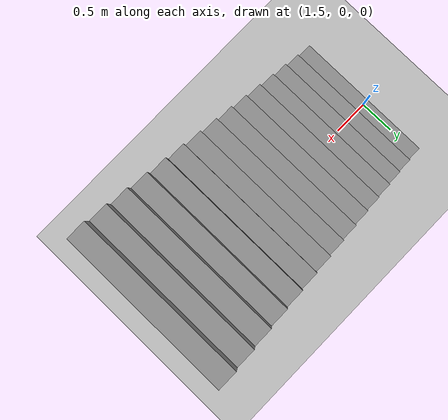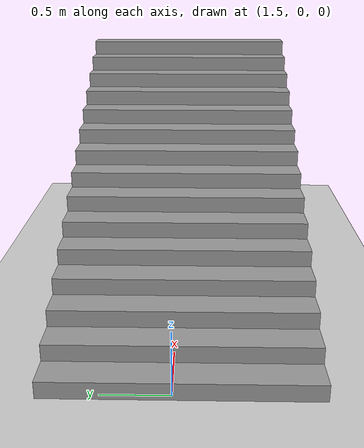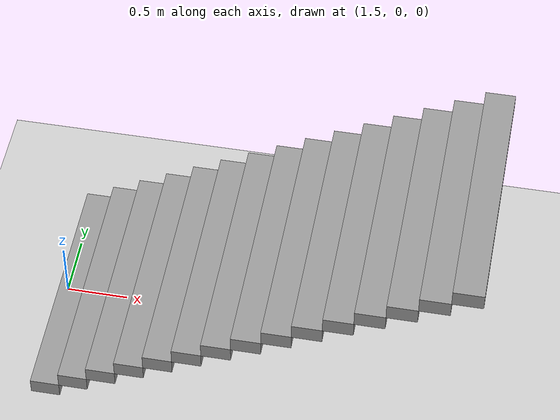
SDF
<sdf version="1.7">
 <world name="default">
  <light name="sun" type="directional">
   <pose>0 0 10 0 -0 0</pose>
   <diffuse>0.8 0.8 0.8 1</diffuse>
   <specular>0.2 0.2 0.2 1</specular>
   <attenuation>
    <range>1000</range>
    <constant>0.9</constant>
    <linear>0.01</linear>
    <quadratic>0.001</quadratic>
   </attenuation>
   <direction>-0.5 0.1 -0.9</direction>
   <spot><inner_angle>0</inner_angle><outer_angle>0</outer_angle><falloff>0</falloff></spot>
  </light>
  <model name="ground_plane">
   <static>1</static>
   <link name="link">
    <collision name="collision">
     <geometry><plane><normal>0 0 1</normal><size>100 100</size></plane></geometry>
     <surface>
      <contact><collide_bitmask>65535</collide_bitmask></contact>
      <friction><ode><mu>100</mu><mu2>50</mu2></ode></friction>
     </surface>
    </collision>
    <visual name="visual">
     <cast_shadows>0</cast_shadows>
     <geometry><plane><normal>0 0 1</normal><size>100 100</size></plane></geometry>
     <material>
      <script><uri>file://media/materials/scripts/gazebo.material</uri><name>Gazebo/Grey</name></script>
     </material>
    </visual>
   </link>
  </model>
  <gravity>0 0 -9.8</gravity>
  <magnetic_field>6e-06 2.3e-05 -4.2e-05</magnetic_field>
  <atmosphere type="adiabatic"/>
  <physics type="ode">
   <max_step_size>0.001</max_step_size>
   <real_time_factor>1</real_time_factor>
   <real_time_update_rate>1000</real_time_update_rate>
  </physics>
  <scene><ambient>0.4 0.4 0.4 1</ambient><background>0.7 0.7 0.7 1</background><shadows>1</shadows></scene>
  <spherical_coordinates>
   <surface_model>EARTH_WGS84</surface_model>
   <latitude_deg>0</latitude_deg>
   <longitude_deg>0</longitude_deg>
   <elevation>0</elevation>
   <heading_deg>0</heading_deg>
  </spherical_coordinates>
  <model name="stair1">
   <pose>2.4767 -0.063951 0 0 -0 0</pose>
   <link name="Stairs_0">
    <visual name="Stairs_0_Visual_0">
     <pose>-0.906633 -0 0.066667 0 -0 1.5708</pose>
     <geometry><box><size>2 0.233333 0.133333</size></box></geometry>
     <material>
      <script><uri>file://media/materials/scripts/gazebo.material</uri><name>Gazebo/Grey</name></script>
      <ambient>1 1 1 1</ambient>
     </material>
     <meta><layer>0</layer></meta>
    </visual>
    <collision name="Stairs_0_Collision_0">
     <geometry><box><size>2 0.233333 0.133333</size></box></geometry>
     <pose>-0.906633 -0 0.066667 0 -0 1.5708</pose>
    </collision>
    <visual name="Stairs_0_Visual_1">
     <pose>-0.673299 -0 0.2 0 -0 1.5708</pose>
     <geometry><box><size>2 0.233333 0.133333</size></box></geometry>
     <material>
      <script><uri>file://media/materials/scripts/gazebo.material</uri><name>Gazebo/Grey</name></script>
      <ambient>1 1 1 1</ambient>
     </material>
     <meta><layer>0</layer></meta>
    </visual>
    <collision name="Stairs_0_Collision_1">
     <geometry><box><size>2 0.233333 0.133333</size></box></geometry>
     <pose>-0.673299 -0 0.2 0 -0 1.5708</pose>
    </collision>
    <visual name="Stairs_0_Visual_2">
     <pose>-0.439966 -0 0.333333 0 -0 1.5708</pose>
     <geometry><box><size>2 0.233333 0.133333</size></box></geometry>
     <material>
      <script><uri>file://media/materials/scripts/gazebo.material</uri><name>Gazebo/Grey</name></script>
      <ambient>1 1 1 1</ambient>
     </material>
     <meta><layer>0</layer></meta>
    </visual>
    <collision name="Stairs_0_Collision_2">
     <geometry><box><size>2 0.233333 0.133333</size></box></geometry>
     <pose>-0.439966 -0 0.333333 0 -0 1.5708</pose>
    </collision>
    <visual name="Stairs_0_Visual_3">
     <pose>-0.206633 -0 0.466667 0 -0 1.5708</pose>
     <geometry><box><size>2 0.233333 0.133333</size></box></geometry>
     <material>
      <script><uri>file://media/materials/scripts/gazebo.material</uri><name>Gazebo/Grey</name></script>
      <ambient>1 1 1 1</ambient>
     </material>
     <meta><layer>0</layer></meta>
    </visual>
    <collision name="Stairs_0_Collision_3">
     <geometry><box><size>2 0.233333 0.133333</size></box></geometry>
     <pose>-0.206633 -0 0.466667 0 -0 1.5708</pose>
    </collision>
    <visual name="Stairs_0_Visual_4">
     <pose>0.026701 -0 0.6 0 -0 1.5708</pose>
     <geometry><box><size>2 0.233333 0.133333</size></box></geometry>
     <material>
      <script><uri>file://media/materials/scripts/gazebo.material</uri><name>Gazebo/Grey</name></script>
      <ambient>1 1 1 1</ambient>
     </material>
     <meta><layer>0</layer></meta>
    </visual>
    <collision name="Stairs_0_Collision_4">
     <geometry><box><size>2 0.233333 0.133333</size></box></geometry>
     <pose>0.026701 -0 0.6 0 -0 1.5708</pose>
    </collision>
    <visual name="Stairs_0_Visual_5">
     <pose>0.260034 -0 0.733333 0 -0 1.5708</pose>
     <geometry><box><size>2 0.233333 0.133333</size></box></geometry>
     <material>
      <script><uri>file://media/materials/scripts/gazebo.material</uri><name>Gazebo/Grey</name></script>
      <ambient>1 1 1 1</ambient>
     </material>
     <meta><layer>0</layer></meta>
    </visual>
    <collision name="Stairs_0_Collision_5">
     <geometry><box><size>2 0.233333 0.133333</size></box></geometry>
     <pose>0.260034 -0 0.733333 0 -0 1.5708</pose>
    </collision>
    <visual name="Stairs_0_Visual_6">
     <pose>0.493368 -0 0.866667 0 -0 1.5708</pose>
     <geometry><box><size>2 0.233333 0.133333</size></box></geometry>
     <material>
      <script><uri>file://media/materials/scripts/gazebo.material</uri><name>Gazebo/Grey</name></script>
      <ambient>1 1 1 1</ambient>
     </material>
     <meta><layer>0</layer></meta>
    </visual>
    <collision name="Stairs_0_Collision_6">
     <geometry><box><size>2 0.233333 0.133333</size></box></geometry>
     <pose>0.493368 -0 0.866667 0 -0 1.5708</pose>
    </collision>
    <visual name="Stairs_0_Visual_7">
     <pose>0.726701 -0 1 0 -0 1.5708</pose>
     <geometry><box><size>2 0.233333 0.133333</size></box></geometry>
     <material>
      <script><uri>file://media/materials/scripts/gazebo.material</uri><name>Gazebo/Grey</name></script>
      <ambient>1 1 1 1</ambient>
     </material>
     <meta><layer>0</layer></meta>
    </visual>
    <collision name="Stairs_0_Collision_7">
     <geometry><box><size>2 0.233333 0.133333</size></box></geometry>
     <pose>0.726701 -0 1 0 -0 1.5708</pose>
    </collision>
    <visual name="Stairs_0_Visual_8">
     <pose>0.960034 0 1.13333 0 -0 1.5708</pose>
     <geometry><box><size>2 0.233333 0.133333</size></box></geometry>
     <material>
      <script><uri>file://media/materials/scripts/gazebo.material</uri><name>Gazebo/Grey</name></script>
      <ambient>1 1 1 1</ambient>
     </material>
     <meta><layer>0</layer></meta>
    </visual>
    <collision name="Stairs_0_Collision_8">
     <geometry><box><size>2 0.233333 0.133333</size></box></geometry>
     <pose>0.960034 0 1.13333 0 -0 1.5708</pose>
    </collision>
    <visual name="Stairs_0_Visual_9">
     <pose>1.19337 0 1.26667 0 -0 1.5708</pose>
     <geometry><box><size>2 0.233333 0.133333</size></box></geometry>
     <material>
      <script><uri>file://media/materials/scripts/gazebo.material</uri><name>Gazebo/Grey</name></script>
      <ambient>1 1 1 1</ambient>
     </material>
     <meta><layer>0</layer></meta>
    </visual>
    <collision name="Stairs_0_Collision_9">
     <geometry><box><size>2 0.233333 0.133333</size></box></geometry>
     <pose>1.19337 0 1.26667 0 -0 1.5708</pose>
    </collision>
    <visual name="Stairs_0_Visual_10">
     <pose>1.4267 0 1.4 0 -0 1.5708</pose>
     <geometry><box><size>2 0.233333 0.133333</size></box></geometry>
     <material>
      <script><uri>file://media/materials/scripts/gazebo.material</uri><name>Gazebo/Grey</name></script>
      <ambient>1 1 1 1</ambient>
     </material>
     <meta><layer>0</layer></meta>
    </visual>
    <collision name="Stairs_0_Collision_10">
     <geometry><box><size>2 0.233333 0.133333</size></box></geometry>
     <pose>1.4267 0 1.4 0 -0 1.5708</pose>
    </collision>
    <visual name="Stairs_0_Visual_11">
     <pose>1.66003 0 1.53333 0 -0 1.5708</pose>
     <geometry><box><size>2 0.233333 0.133333</size></box></geometry>
     <material>
      <script><uri>file://media/materials/scripts/gazebo.material</uri><name>Gazebo/Grey</name></script>
      <ambient>1 1 1 1</ambient>
     </material>
     <meta><layer>0</layer></meta>
    </visual>
    <collision name="Stairs_0_Collision_11">
     <geometry><box><size>2 0.233333 0.133333</size></box></geometry>
     <pose>1.66003 0 1.53333 0 -0 1.5708</pose>
    </collision>
    <visual name="Stairs_0_Visual_12">
     <pose>1.89337 0 1.66667 0 -0 1.5708</pose>
     <geometry><box><size>2 0.233333 0.133333</size></box></geometry>
     <material>
      <script><uri>file://media/materials/scripts/gazebo.material</uri><name>Gazebo/Grey</name></script>
      <ambient>1 1 1 1</ambient>
     </material>
     <meta><layer>0</layer></meta>
    </visual>
    <collision name="Stairs_0_Collision_12">
     <geometry><box><size>2 0.233333 0.133333</size></box></geometry>
     <pose>1.89337 0 1.66667 0 -0 1.5708</pose>
    </collision>
    <visual name="Stairs_0_Visual_13">
     <pose>2.1267 0 1.8 0 -0 1.5708</pose>
     <geometry><box><size>2 0.233333 0.133333</size></box></geometry>
     <material>
      <script><uri>file://media/materials/scripts/gazebo.material</uri><name>Gazebo/Grey</name></script>
      <ambient>1 1 1 1</ambient>
     </material>
     <meta><layer>0</layer></meta>
    </visual>
    <collision name="Stairs_0_Collision_13">
     <geometry><box><size>2 0.233333 0.133333</size></box></geometry>
     <pose>2.1267 0 1.8 0 -0 1.5708</pose>
    </collision>
    <visual name="Stairs_0_Visual_14">
     <pose>2.36003 0 1.93333 0 -0 1.5708</pose>
     <geometry><box><size>2 0.233333 0.133333</size></box></geometry>
     <material>
      <script><uri>file://media/materials/scripts/gazebo.material</uri><name>Gazebo/Grey</name></script>
      <ambient>1 1 1 1</ambient>
     </material>
     <meta><layer>0</layer></meta>
    </visual>
    <collision name="Stairs_0_Collision_14">
     <geometry><box><size>2 0.233333 0.133333</size></box></geometry>
     <pose>2.36003 0 1.93333 0 -0 1.5708</pose>
    </collision>
   </link>
   <static>1</static>
  </model>
 </world>
</sdf>
